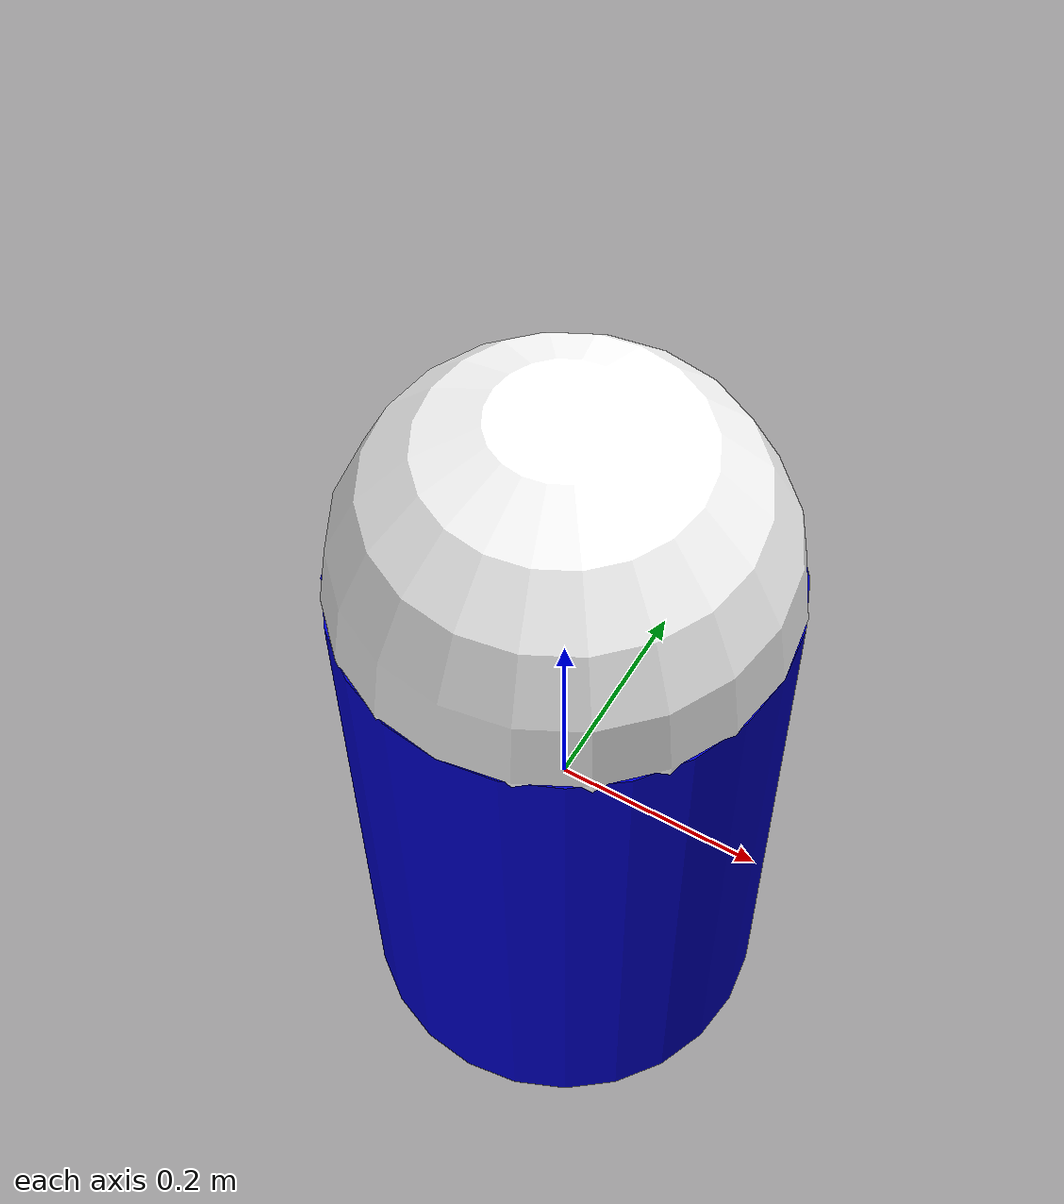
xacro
<?xml version="1.0"?>
<robot xmlns:xacro="http://www.ros.org/wiki/xacro"  name="arduinobot">

<xacro:include filename="inertial_macros.xacro" />

<material name="blue">
    <color rgba="0 0 0.8 1"/>
  </material>
  <material name="black">
    <color rgba="0 0 0 1"/>
  </material>
  <material name="white">
    <color rgba="1 1 1 1"/>
  </material>

  <link name="base_link">
    <visual>
      <geometry>
        <cylinder length="0.6" radius="0.2"/>
      </geometry>
      <material name="blue"/>
    </visual>

    <collision>
      <geometry>
        <sphere radius="0.2"/>
      </geometry>
    </collision>

  </link>

  <link name="head">
    <visual>
      <geometry>
        <sphere radius="0.2"/>
      </geometry>
      <material name="white"/>
    </visual>

    <collision>
      <geometry>
        <sphere radius="0.2"/>
      </geometry>
    </collision>

    <xacro:inertial_sphere mass="5" radius="0.2">
            <origin xyz="0 0 0" rpy="0 0 0"/>
    </xacro:inertial_sphere>
  </link>
  <joint name="head_swivel" type="continuous">
    <parent link="base_link"/>
    <child link="head"/>
    <axis xyz="0 0 1"/>
    <origin xyz="0 0 0.3"/>
  </joint>

</robot>
